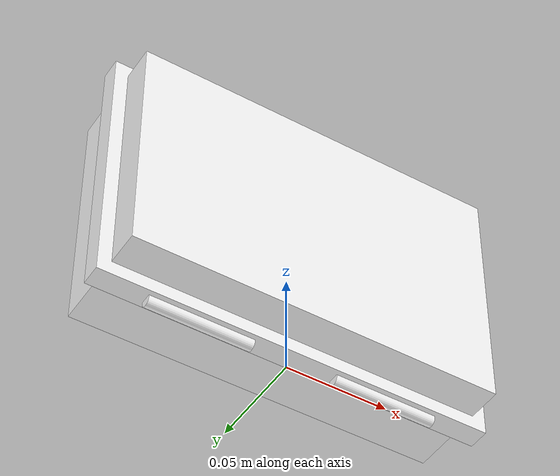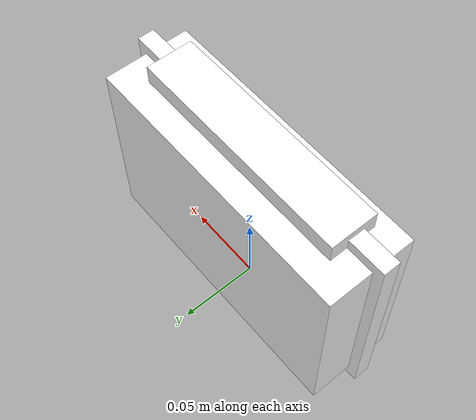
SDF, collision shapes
<?xml version='1.0' ?>
<sdf version="1.6">
    <model name="suitcase_static">
        <static>true</static>
        <link name="link">
            <visual name="visual">
                <geometry>
                    <mesh>
                        <uri>model://suitcase/meshes/SmallCase.dae</uri>
                    </mesh>
                </geometry>
                <material>
                    <diffuse>1.0 1.0 1.0</diffuse>
                    <specular>1.0 1.0 1.0</specular>
                    <pbr>
                        <metal>
                            <albedo_map>model://suitcase/materials/textures/SmallCase_Albedo.jpg</albedo_map>
                            <normal_map>model://suitcase/materials/textures/SmallCase_Normal.jpg</normal_map>
                            <roughness_map>model://suitcase/materials/textures/SmallCase_Roughness.jpg</roughness_map>
                            <metalness_map>model://suitcase/materials/textures/SmallCase_Metalness.png</metalness_map>
                        </metal>
                    </pbr>
                </material>
            </visual>
            <collision name="Box004">
                <pose>0.0 -0.00514981 0.064262 1.5708 0.0 0.0</pose>
                <geometry>
                    <box>
                        <size>0.190361 0.129459 0.0103708</size>
                    </box>
                </geometry>
            </collision>
            <collision name="Box005">
                <pose>0.0 -0.00356354 0.126202 0.0 0.0 0.0</pose>
                <geometry>
                    <box>
                        <size>0.142795 0.0291594 0.0156732</size>
                    </box>
                </geometry>
            </collision>
            <collision name="Cylinder007">
                <pose>-0.0449782 -0.005139 -0.0015085 1.5708 0.0 -1.5708</pose>
                <geometry>
                    <cylinder>
                        <length>0.0498479</length>
                        <radius>0.00290607</radius>
                    </cylinder>
                </geometry>
            </collision>
            <collision name="Cylinder008">
                <pose>0.044978 -0.005139 -0.0015085 1.5708 0.0 1.5708</pose>
                <geometry>
                    <cylinder>
                        <length>0.0498479</length>
                        <radius>0.00290607</radius>
                    </cylinder>
                </geometry>
            </collision>
            <collision name="Box003">
                <pose>0.0 -9.18023e-05 0.064262 1.5708 0.0 0.0</pose>
                <geometry>
                    <box>
                        <size>0.177553 0.116038 0.0543985</size>
                    </box>
                </geometry>
            </collision>
        </link>
  <plugin name="gz::sim::systems::Label" filename="gz-sim-label-system">
    <label>1</label>
  </plugin>
    </model>
</sdf>
